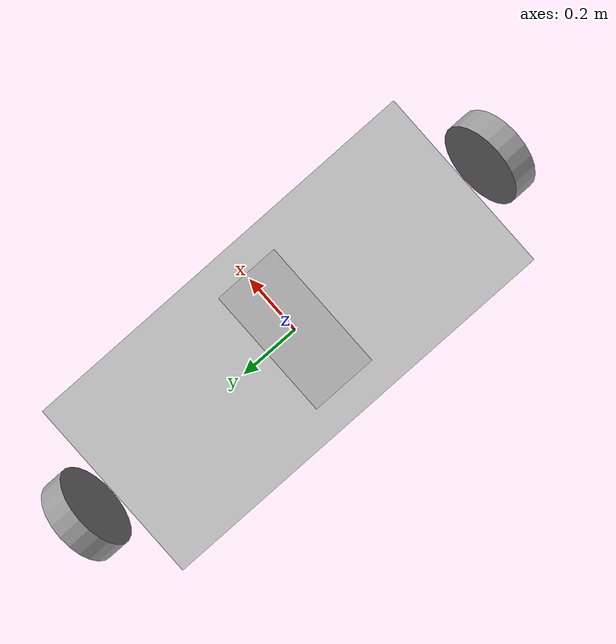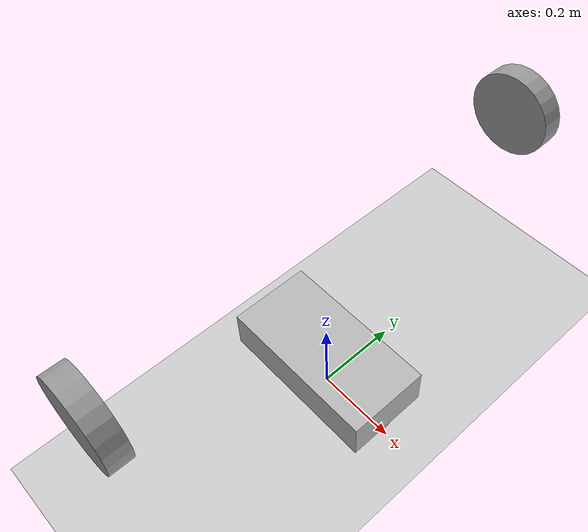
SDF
<sdf version="1.6">
 <world name="default">
  <model name="ground_plane">
   <static>1</static>
   <link name="link">
    <collision name="collision">
     <geometry><plane><normal>0 0 1</normal><size>100 100</size></plane></geometry>
     <surface><friction><ode><mu>100</mu><mu2>50</mu2></ode></friction></surface>
    </collision>
    <visual name="visual">
     <cast_shadows>0</cast_shadows>
     <geometry><plane><normal>0 0 1</normal><size>100 100</size></plane></geometry>
     <material>
      <script><uri>file://media/materials/scripts/gazebo.material</uri><name>Gazebo/Grey</name></script>
     </material>
    </visual>
   </link>
  </model>
  <light name="sun" type="directional">
   <pose>0 0 10 0 -0 0</pose>
   <diffuse>0.8 0.8 0.8 1</diffuse>
   <specular>0.1 0.1 0.1 1</specular>
   <attenuation>
    <range>1000</range>
    <constant>0.9</constant>
    <linear>0.01</linear>
    <quadratic>0.001</quadratic>
   </attenuation>
   <direction>-0.5 0.5 -1</direction>
  </light>
  <gravity>0 0 -9.8</gravity>
  <magnetic_field>6e-06 2.3e-05 -4.2e-05</magnetic_field>
  <atmosphere type="adiabatic"/>
  <physics name="default_physics" default="0" type="ode">
   <max_step_size>0.001</max_step_size>
   <real_time_factor>1</real_time_factor>
   <real_time_update_rate>1000</real_time_update_rate>
  </physics>
  <scene><ambient>0.4 0.4 0.4 1</ambient><background>0.7 0.7 0.7 1</background><shadows>1</shadows></scene>
  <spherical_coordinates>
   <surface_model>EARTH_WGS84</surface_model>
   <latitude_deg>0</latitude_deg>
   <longitude_deg>0</longitude_deg>
   <elevation>0</elevation>
   <heading_deg>0</heading_deg>
  </spherical_coordinates>
  <model name="my_robot">
   <link name="robot_footprint">
    <inertial>
     <mass>15</mass>
     <inertia><ixx>0.1</ixx><ixy>0</ixy><ixz>0</ixz><iyy>0.1</iyy><iyz>0</iyz><izz>0.1</izz></inertia>
    </inertial>
    <collision name="robot_footprint_fixed_joint_lump__collision_collision">
     <geometry><box><size>0.4 0.2 0.1</size></box></geometry>
    </collision>
    <collision name="robot_footprint_fixed_joint_lump__back_caster_collision_collision_1">
     <pose>-0.15 0 -0.05 0 -0 0</pose>
     <geometry><sphere><radius>0.0499</radius></sphere></geometry>
    </collision>
    <collision name="robot_footprint_fixed_joint_lump__front_caster_collision_collision_2">
     <pose>0.15 0 -0.05 0 -0 0</pose>
     <geometry><sphere><radius>0.0499</radius></sphere></geometry>
    </collision>
    <visual name="robot_footprint_fixed_joint_lump__chassis_visual_visual">
     <geometry><box><size>0.4 0.2 0.1</size></box></geometry>
    </visual>
    <visual name="robot_footprint_fixed_joint_lump__back_caster_visual_visual_1">
     <pose>-0.15 0 -0.05 0 -0 0</pose>
     <geometry><sphere><radius>0.05</radius></sphere></geometry>
    </visual>
    <visual name="robot_footprint_fixed_joint_lump__front_caster_visual_visual_2">
     <pose>0.15 0 -0.05 0 -0 0</pose>
     <geometry><sphere><radius>0.05</radius></sphere></geometry>
    </visual>
   </link>
   <pose>0 -1e-06 0.0999 1.1e-05 -0 0</pose>
  </model>
  <model name="newrobot">
   <link name="left_wheel">
    <pose>2.3e-05 -0.555479 -0 4.8e-05 1.5707 1.57075</pose>
    <inertial>
     <mass>1</mass>
     <inertia><ixx>0.1</ixx><ixy>0</ixy><ixz>0</ixz><iyy>0.1</iyy><iyz>0</iyz><izz>0.1</izz></inertia>
    </inertial>
    <visual name="visual">
     <geometry><cylinder><radius>0.1</radius><length>0.05</length></cylinder></geometry>
     <material>
      <lighting>1</lighting>
      <script><uri>file://media/materials/scripts/gazebo.material</uri><name>Gazebo/Grey</name></script>
      <ambient>0.3 0.3 0.3 1</ambient>
      <diffuse>0.7 0.7 0.7 1</diffuse>
      <specular>0.01 0.01 0.01 1</specular>
      <emissive>0 0 0 1</emissive>
      <shader type="vertex"><normal_map>__default__</normal_map></shader>
     </material>
    </visual>
    <collision name="collision">
     <geometry><cylinder><radius>0.1</radius><length>0.05</length></cylinder></geometry>
     <surface>
      <friction>
       <ode><mu>1</mu><mu2>1</mu2><fdir1>0 0 0</fdir1><slip1>0</slip1><slip2>0</slip2></ode>
       <torsional>
        <coefficient>1</coefficient>
        <patch_radius>0</patch_radius>
        <surface_radius>0</surface_radius>
        <use_patch_radius>1</use_patch_radius>
        <ode><slip>0</slip></ode>
       </torsional>
      </friction>
      <bounce><restitution_coefficient>0</restitution_coefficient><threshold>1e+06</threshold></bounce>
      <contact>
       <collide_without_contact>0</collide_without_contact>
       <collide_without_contact_bitmask>1</collide_without_contact_bitmask>
       <collide_bitmask>1</collide_bitmask>
       <ode>
        <soft_cfm>0</soft_cfm>
        <soft_erp>0.2</soft_erp>
        <kp>1e+13</kp>
        <kd>1</kd>
        <max_vel>0.01</max_vel>
        <min_depth>0</min_depth>
       </ode>
       <bullet>
        <split_impulse>1</split_impulse>
        <split_impulse_penetration_threshold>-0.01</split_impulse_penetration_threshold>
        <soft_cfm>0</soft_cfm>
        <soft_erp>0.2</soft_erp>
        <kp>1e+13</kp>
        <kd>1</kd>
       </bullet>
      </contact>
     </surface>
    </collision>
   </link>
   <link name="right_wheel">
    <pose>-2.3e-05 0.555479 0 -0.000572 1.5707 1.57013</pose>
    <inertial>
     <mass>1</mass>
     <inertia><ixx>0.1</ixx><ixy>0</ixy><ixz>0</ixz><iyy>0.1</iyy><iyz>0</iyz><izz>0.1</izz></inertia>
    </inertial>
    <visual name="visual">
     <geometry><cylinder><radius>0.1</radius><length>0.05</length></cylinder></geometry>
     <material>
      <lighting>1</lighting>
      <script><uri>file://media/materials/scripts/gazebo.material</uri><name>Gazebo/Grey</name></script>
      <ambient>0.3 0.3 0.3 1</ambient>
      <diffuse>0.7 0.7 0.7 1</diffuse>
      <specular>0.01 0.01 0.01 1</specular>
      <emissive>0 0 0 1</emissive>
      <shader type="vertex"><normal_map>__default__</normal_map></shader>
     </material>
    </visual>
    <collision name="collision">
     <geometry><cylinder><radius>0.1</radius><length>0.05</length></cylinder></geometry>
     <surface>
      <friction>
       <ode><mu>1</mu><mu2>1</mu2><fdir1>0 0 0</fdir1><slip1>0</slip1><slip2>0</slip2></ode>
       <torsional>
        <coefficient>1</coefficient>
        <patch_radius>0</patch_radius>
        <surface_radius>0</surface_radius>
        <use_patch_radius>1</use_patch_radius>
        <ode><slip>0</slip></ode>
       </torsional>
      </friction>
      <bounce><restitution_coefficient>0</restitution_coefficient><threshold>1e+06</threshold></bounce>
      <contact>
       <collide_without_contact>0</collide_without_contact>
       <collide_without_contact_bitmask>1</collide_without_contact_bitmask>
       <collide_bitmask>1</collide_bitmask>
       <ode>
        <soft_cfm>0</soft_cfm>
        <soft_erp>0.2</soft_erp>
        <kp>1e+13</kp>
        <kd>1</kd>
        <max_vel>0.01</max_vel>
        <min_depth>0</min_depth>
       </ode>
       <bullet>
        <split_impulse>1</split_impulse>
        <split_impulse_penetration_threshold>-0.01</split_impulse_penetration_threshold>
        <soft_cfm>0</soft_cfm>
        <soft_erp>0.2</soft_erp>
        <kp>1e+13</kp>
        <kd>1</kd>
       </bullet>
      </contact>
     </surface>
    </collision>
   </link>
   <static>0</static>
   <pose>2.3e-05 0.025317 0.500023 0 -0 0</pose>
  </model>
 </world>
</sdf>
